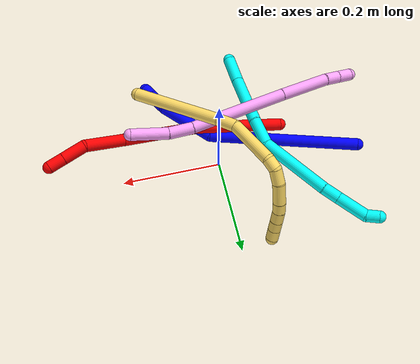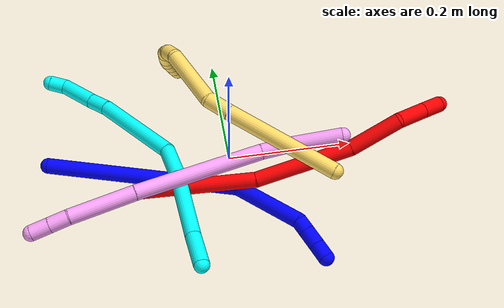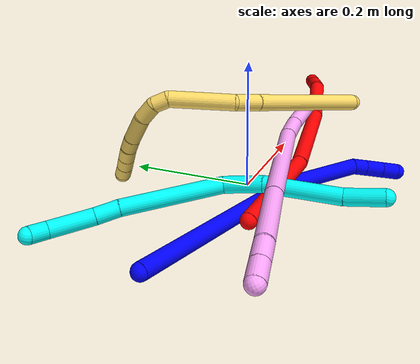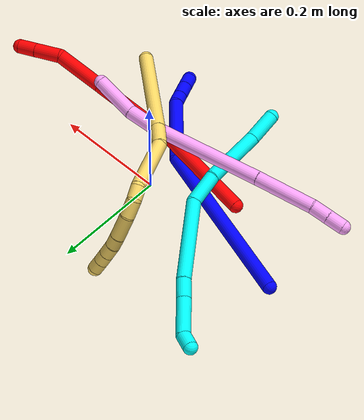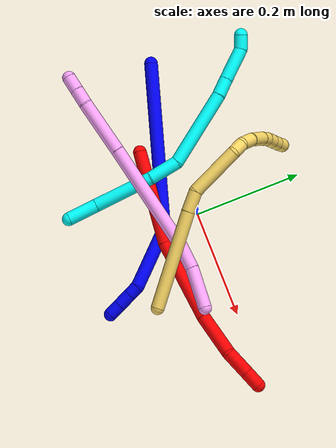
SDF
<sdf version="1.7">
 <world name="default">
  <plugin name="TubeGeneratorPlugin" filename="libtube_generator_plugin.so"/>
  <model name="photoneo_s_sensor">
   <static>1</static>
   <pose>0 0 2 1.57079 1.57079 3.14159</pose>
   <link name="link">
    <inertial><mass>0.1</mass></inertial>
    <sensor name="sensor" type="depth">
     <update_rate>30</update_rate>
     <camera>
      <horizontal_fov>1.22</horizontal_fov>
      <image><width>1920</width><height>1200</height><format>B8G8R8</format></image>
      <clip><near>0.1</near><far>4</far></clip>
      <depth_camera><output>points</output></depth_camera>
     </camera>
     <plugin name="camera_plugin" filename="libgazebo_ros_depth_camera.so">
      <baseline>0.2</baseline>
      <alwaysOn>1</alwaysOn>
      <updateRate>0.0</updateRate>
      <cameraName>camera_ir</cameraName>
      <imageTopicName>/camera/color/image_raw</imageTopicName>
      <cameraInfoTopicName>/camera/color/camera_info</cameraInfoTopicName>
      <depthImageTopicName>/camera/depth/image_raw</depthImageTopicName>
      <depthImageCameraInfoTopicName>/camera/depth/camera_info</depthImageCameraInfoTopicName>
      <pointCloudTopicName>/camera/depth/points</pointCloudTopicName>
      <frameName>fr_optical</frameName>
      <pointCloudCutoff>0.1</pointCloudCutoff>
      <pointCloudCutoffMax>2.0</pointCloudCutoffMax>
      <distortionK1>0</distortionK1>
      <distortionK2>0</distortionK2>
      <distortionK3>0</distortionK3>
      <distortionT1>0</distortionT1>
      <distortionT2>0</distortionT2>
      <CxPrime>0</CxPrime>
      <Cx>0</Cx>
      <Cy>0</Cy>
      <focalLength>0</focalLength>
      <hackBaseline>0</hackBaseline>
     </plugin>
    </sensor>
   </link>
  </model>
  <gravity>0 0 -9.8</gravity>
  <magnetic_field>6e-06 2.3e-05 -4.2e-05</magnetic_field>
  <atmosphere type="adiabatic"/>
  <physics name="default_physics" default="0" type="ode">
   <max_step_size>0.003</max_step_size>
   <real_time_factor>1</real_time_factor>
   <real_time_update_rate>1000</real_time_update_rate>
   <max_contacts>10000</max_contacts>
   <ode>
    <solver>
     <type>quick</type>
     <iters>100</iters>
     <sor>1.3</sor>
     <use_dynamic_moi_rescaling>0</use_dynamic_moi_rescaling>
    </solver>
    <constraints>
     <contact_max_correcting_vel>0</contact_max_correcting_vel>
     <contact_surface_layer>0.001</contact_surface_layer>
     <cfm>0</cfm>
     <erp>0.2</erp>
    </constraints>
   </ode>
  </physics>
  <scene><ambient>0.4 0.4 0.4 1</ambient><background>0.7 0.7 0.7 1</background><shadows>0</shadows></scene>
  <audio><device>default</device></audio>
  <spherical_coordinates>
   <surface_model>EARTH_WGS84</surface_model>
   <latitude_deg>0</latitude_deg>
   <longitude_deg>0</longitude_deg>
   <elevation>0</elevation>
   <heading_deg>0</heading_deg>
  </spherical_coordinates>
  <model name="bin">
   <static>1</static>
   <link name="bottom">
    <collision name="collision-bottom">
     <pose>0 0 -0.01 0 -0 0</pose>
     <geometry><box><size>0.8 0.6 0.02</size></box></geometry>
     <surface>
      <friction><ode><mu>100</mu><mu2>100</mu2></ode></friction>
      <contact><collide_bitmask>65535</collide_bitmask></contact>
     </surface>
    </collision>
   </link>
   <link name="west_wall">
    <collision name="collision-west_wall">
     <pose>-0.41 0 0.1 0 -0 0</pose>
     <geometry><box><size>0.02 0.6 0.2</size></box></geometry>
     <surface>
      <friction><ode><mu>100</mu><mu2>100</mu2></ode></friction>
      <contact><collide_bitmask>65535</collide_bitmask></contact>
     </surface>
    </collision>
   </link>
   <link name="east_wall">
    <collision name="collision-east_wall">
     <pose>0.41 0 0.1 0 -0 0</pose>
     <geometry><box><size>0.02 0.6 0.2</size></box></geometry>
     <surface>
      <friction><ode><mu>100</mu><mu2>100</mu2></ode></friction>
      <contact><collide_bitmask>65535</collide_bitmask></contact>
     </surface>
    </collision>
   </link>
   <link name="south_wall">
    <collision name="collision-south_wall">
     <pose>0 -0.31 0.1 0 -0 0</pose>
     <geometry><box><size>0.8 0.02 0.2</size></box></geometry>
     <surface>
      <friction><ode><mu>100</mu><mu2>100</mu2></ode></friction>
      <contact><collide_bitmask>65535</collide_bitmask></contact>
     </surface>
    </collision>
   </link>
   <link name="north_wall">
    <collision name="collision-north_wall">
     <pose>0 0.31 0.1 0 -0 0</pose>
     <geometry><box><size>0.8 0.02 0.2</size></box></geometry>
     <surface>
      <friction><ode><mu>100</mu><mu2>100</mu2></ode></friction>
      <contact><collide_bitmask>65535</collide_bitmask></contact>
     </surface>
    </collision>
   </link>
  </model>
  <model name="1">
   <static>0</static>
   <link name="1">
    <collision name="collision-cylinder-e_1_1_4">
     <pose>0.024077 -0.043823 -0.146399 2.85074 0.156269 0.981854</pose>
     <geometry><cylinder><radius>0.0125</radius><length>0.309405</length></cylinder></geometry>
     <surface>
      <friction><ode><mu>1.16</mu><mu2>1.16</mu2><slip1>0</slip1><slip2>0</slip2></ode></friction>
      <contact><ode><kp>1e+06</kp><kd>1</kd><max_vel>0</max_vel><min_depth>0.001</min_depth></ode></contact>
     </surface>
    </collision>
    <visual name="visual-cylinder-e_1_1_4">
     <pose>0.024077 -0.043823 -0.146399 2.85074 0.156269 0.981854</pose>
     <geometry><cylinder><radius>0.0125</radius><length>0.309405</length></cylinder></geometry>
     <material><ambient>0 0 1 1</ambient></material>
    </visual>
    <collision name="collision-cylinder-e_2_4_5">
     <pose>0.084677 -0.097557 -0.338267 2.92698 0.665421 2.53723</pose>
     <geometry><cylinder><radius>0.0125</radius><length>0.118316</length></cylinder></geometry>
     <surface>
      <friction><ode><mu>1.16</mu><mu2>1.16</mu2><slip1>0</slip1><slip2>0</slip2></ode></friction>
      <contact><ode><kp>1e+06</kp><kd>1</kd><max_vel>0</max_vel><min_depth>0.001</min_depth></ode></contact>
     </surface>
    </collision>
    <visual name="visual-cylinder-e_2_4_5">
     <pose>0.084677 -0.097557 -0.338267 2.92698 0.665421 2.53723</pose>
     <geometry><cylinder><radius>0.0125</radius><length>0.118316</length></cylinder></geometry>
     <material><ambient>0 0 1 1</ambient></material>
    </visual>
    <collision name="collision-cylinder-e_3_5_6">
     <pose>0.129628 -0.110985 -0.388375 2.49273 0.966315 2.00147</pose>
     <geometry><cylinder><radius>0.0125</radius><length>0.020484</length></cylinder></geometry>
     <surface>
      <friction><ode><mu>1.16</mu><mu2>1.16</mu2><slip1>0</slip1><slip2>0</slip2></ode></friction>
      <contact><ode><kp>1e+06</kp><kd>1</kd><max_vel>0</max_vel><min_depth>0.001</min_depth></ode></contact>
     </surface>
    </collision>
    <visual name="visual-cylinder-e_3_5_6">
     <pose>0.129628 -0.110985 -0.388375 2.49273 0.966315 2.00147</pose>
     <geometry><cylinder><radius>0.0125</radius><length>0.020484</length></cylinder></geometry>
     <material><ambient>0 0 1 1</ambient></material>
    </visual>
    <collision name="collision-cylinder-e_4_6_7">
     <pose>0.149233 -0.119185 -0.399127 2.48805 0.967534 1.9958</pose>
     <geometry><cylinder><radius>0.0125</radius><length>0.027147</length></cylinder></geometry>
     <surface>
      <friction><ode><mu>1.16</mu><mu2>1.16</mu2><slip1>0</slip1><slip2>0</slip2></ode></friction>
      <contact><ode><kp>1e+06</kp><kd>1</kd><max_vel>0</max_vel><min_depth>0.001</min_depth></ode></contact>
     </surface>
    </collision>
    <visual name="visual-cylinder-e_4_6_7">
     <pose>0.149233 -0.119185 -0.399127 2.48805 0.967534 1.9958</pose>
     <geometry><cylinder><radius>0.0125</radius><length>0.027147</length></cylinder></geometry>
     <material><ambient>0 0 1 1</ambient></material>
    </visual>
    <collision name="collision-cylinder-e_5_7_2">
     <pose>0.170584 -0.128101 -0.41076 2.4873 0.970998 1.9985</pose>
     <geometry><cylinder><radius>0.0125</radius><length>0.024648</length></cylinder></geometry>
     <surface>
      <friction><ode><mu>1.16</mu><mu2>1.16</mu2><slip1>0</slip1><slip2>0</slip2></ode></friction>
      <contact><ode><kp>1e+06</kp><kd>1</kd><max_vel>0</max_vel><min_depth>0.001</min_depth></ode></contact>
     </surface>
    </collision>
    <visual name="visual-cylinder-e_5_7_2">
     <pose>0.170584 -0.128101 -0.41076 2.4873 0.970998 1.9985</pose>
     <geometry><cylinder><radius>0.0125</radius><length>0.024648</length></cylinder></geometry>
     <material><ambient>0 0 1 1</ambient></material>
    </visual>
    <collision name="collision-sphere-2">
     <pose>0.180756 -0.132335 -0.41628 0 -0 0</pose>
     <geometry><sphere><radius>0.0125</radius></sphere></geometry>
     <surface>
      <friction><ode><mu>1.16</mu><mu2>1.16</mu2><slip1>0</slip1><slip2>0</slip2></ode></friction>
      <contact><ode><kp>1e+06</kp><kd>1</kd><max_vel>0</max_vel><min_depth>0.001</min_depth></ode></contact>
     </surface>
    </collision>
    <visual name="visual-sphere-2">
     <pose>0.180756 -0.132335 -0.41628 0 -0 0</pose>
     <geometry><sphere><radius>0.0125</radius></sphere></geometry>
     <material><ambient>0 0 1 1</ambient></material>
    </visual>
    <collision name="collision-sphere-7">
     <pose>0.160411 -0.123867 -0.40524 0 -0 0</pose>
     <geometry><sphere><radius>0.0125</radius></sphere></geometry>
     <surface>
      <friction><ode><mu>1.16</mu><mu2>1.16</mu2><slip1>0</slip1><slip2>0</slip2></ode></friction>
      <contact><ode><kp>1e+06</kp><kd>1</kd><max_vel>0</max_vel><min_depth>0.001</min_depth></ode></contact>
     </surface>
    </collision>
    <visual name="visual-sphere-7">
     <pose>0.160411 -0.123867 -0.40524 0 -0 0</pose>
     <geometry><sphere><radius>0.0125</radius></sphere></geometry>
     <material><ambient>0 0 1 1</ambient></material>
    </visual>
    <collision name="collision-sphere-6">
     <pose>0.138055 -0.114503 -0.393013 0 -0 0</pose>
     <geometry><sphere><radius>0.0125</radius></sphere></geometry>
     <surface>
      <friction><ode><mu>1.16</mu><mu2>1.16</mu2><slip1>0</slip1><slip2>0</slip2></ode></friction>
      <contact><ode><kp>1e+06</kp><kd>1</kd><max_vel>0</max_vel><min_depth>0.001</min_depth></ode></contact>
     </surface>
    </collision>
    <visual name="visual-sphere-6">
     <pose>0.138055 -0.114503 -0.393013 0 -0 0</pose>
     <geometry><sphere><radius>0.0125</radius></sphere></geometry>
     <material><ambient>0 0 1 1</ambient></material>
    </visual>
    <collision name="collision-sphere-5">
     <pose>0.121201 -0.107468 -0.383737 0 -0 0</pose>
     <geometry><sphere><radius>0.0125</radius></sphere></geometry>
     <surface>
      <friction><ode><mu>1.16</mu><mu2>1.16</mu2><slip1>0</slip1><slip2>0</slip2></ode></friction>
      <contact><ode><kp>1e+06</kp><kd>1</kd><max_vel>0</max_vel><min_depth>0.001</min_depth></ode></contact>
     </surface>
    </collision>
    <visual name="visual-sphere-5">
     <pose>0.121201 -0.107468 -0.383737 0 -0 0</pose>
     <geometry><sphere><radius>0.0125</radius></sphere></geometry>
     <material><ambient>0 0 1 1</ambient></material>
    </visual>
    <collision name="collision-sphere-1">
     <geometry><sphere><radius>0.0125</radius></sphere></geometry>
     <surface>
      <friction><ode><mu>1.16</mu><mu2>1.16</mu2><slip1>0</slip1><slip2>0</slip2></ode></friction>
      <contact><ode><kp>1e+06</kp><kd>1</kd><max_vel>0</max_vel><min_depth>0.001</min_depth></ode></contact>
     </surface>
    </collision>
    <visual name="visual-sphere-1">
     <geometry><sphere><radius>0.0125</radius></sphere></geometry>
     <material><ambient>0 0 1 1</ambient></material>
    </visual>
    <collision name="collision-sphere-4">
     <pose>0.048154 -0.087646 -0.292798 0 -0 0</pose>
     <geometry><sphere><radius>0.0125</radius></sphere></geometry>
     <surface>
      <friction><ode><mu>1.16</mu><mu2>1.16</mu2><slip1>0</slip1><slip2>0</slip2></ode></friction>
      <contact><ode><kp>1e+06</kp><kd>1</kd><max_vel>0</max_vel><min_depth>0.001</min_depth></ode></contact>
     </surface>
    </collision>
    <visual name="visual-sphere-4">
     <pose>0.048154 -0.087646 -0.292798 0 -0 0</pose>
     <geometry><sphere><radius>0.0125</radius></sphere></geometry>
     <material><ambient>0 0 1 1</ambient></material>
    </visual>
    <inertial>
     <pose>0.056759 -0.067536 -0.228468 0 -0 0</pose>
     <mass>0.5</mass>
     <inertia>
      <ixx>0.003386</ixx>
      <ixy>0</ixy>
      <ixz>0</ixz>
      <iyy>0.000997</iyy>
      <iyz>0</iyz>
      <izz>0.000217</izz>
     </inertia>
    </inertial>
   </link>
   <pose>-0.292713 0.02337 0.011498 1.8498 -0.074905 -1.71221</pose>
  </model>
  <model name="2">
   <static>0</static>
   <link name="2">
    <collision name="collision-cylinder-e_1_1_4">
     <pose>0.064603 0.007147 0.060559 -0.11748 0.814242 -0.050706</pose>
     <geometry><cylinder><radius>0.0125</radius><length>0.177675</length></cylinder></geometry>
     <surface>
      <friction><ode><mu>1.16</mu><mu2>1.16</mu2><slip1>0</slip1><slip2>0</slip2></ode></friction>
      <contact><ode><kp>1e+06</kp><kd>1</kd><max_vel>0</max_vel><min_depth>0.001</min_depth></ode></contact>
     </surface>
    </collision>
    <visual name="visual-cylinder-e_1_1_4">
     <pose>0.064603 0.007147 0.060559 -0.11748 0.814242 -0.050706</pose>
     <geometry><cylinder><radius>0.0125</radius><length>0.177675</length></cylinder></geometry>
     <material><ambient>1 0 0 1</ambient></material>
    </visual>
    <collision name="collision-cylinder-e_2_4_5">
     <pose>0.193968 0.030655 0.162266 -0.378431 0.971062 -0.201417</pose>
     <geometry><cylinder><radius>0.0125</radius><length>0.156907</length></cylinder></geometry>
     <surface>
      <friction><ode><mu>1.16</mu><mu2>1.16</mu2><slip1>0</slip1><slip2>0</slip2></ode></friction>
      <contact><ode><kp>1e+06</kp><kd>1</kd><max_vel>0</max_vel><min_depth>0.001</min_depth></ode></contact>
     </surface>
    </collision>
    <visual name="visual-cylinder-e_2_4_5">
     <pose>0.193968 0.030655 0.162266 -0.378431 0.971062 -0.201417</pose>
     <geometry><cylinder><radius>0.0125</radius><length>0.156907</length></cylinder></geometry>
     <material><ambient>1 0 0 1</ambient></material>
    </visual>
    <collision name="collision-cylinder-e_3_5_6">
     <pose>0.293151 0.064493 0.221782 -0.760574 0.935925 -0.3987</pose>
     <geometry><cylinder><radius>0.0125</radius><length>0.085503</length></cylinder></geometry>
     <surface>
      <friction><ode><mu>1.16</mu><mu2>1.16</mu2><slip1>0</slip1><slip2>0</slip2></ode></friction>
      <contact><ode><kp>1e+06</kp><kd>1</kd><max_vel>0</max_vel><min_depth>0.001</min_depth></ode></contact>
     </surface>
    </collision>
    <visual name="visual-cylinder-e_3_5_6">
     <pose>0.293151 0.064493 0.221782 -0.760574 0.935925 -0.3987</pose>
     <geometry><cylinder><radius>0.0125</radius><length>0.085503</length></cylinder></geometry>
     <material><ambient>1 0 0 1</ambient></material>
    </visual>
    <collision name="collision-cylinder-e_4_6_7">
     <pose>0.350611 0.08184 0.245873 0.022857 1.32728 0.017873</pose>
     <geometry><cylinder><radius>0.0125</radius><length>0.047478</length></cylinder></geometry>
     <surface>
      <friction><ode><mu>1.16</mu><mu2>1.16</mu2><slip1>0</slip1><slip2>0</slip2></ode></friction>
      <contact><ode><kp>1e+06</kp><kd>1</kd><max_vel>0</max_vel><min_depth>0.001</min_depth></ode></contact>
     </surface>
    </collision>
    <visual name="visual-cylinder-e_4_6_7">
     <pose>0.350611 0.08184 0.245873 0.022857 1.32728 0.017873</pose>
     <geometry><cylinder><radius>0.0125</radius><length>0.047478</length></cylinder></geometry>
     <material><ambient>1 0 0 1</ambient></material>
    </visual>
    <collision name="collision-cylinder-e_5_7_2">
     <pose>0.389367 0.081479 0.255589 0.057651 1.32158 0.044821</pose>
     <geometry><cylinder><radius>0.0125</radius><length>0.032438</length></cylinder></geometry>
     <surface>
      <friction><ode><mu>1.16</mu><mu2>1.16</mu2><slip1>0</slip1><slip2>0</slip2></ode></friction>
      <contact><ode><kp>1e+06</kp><kd>1</kd><max_vel>0</max_vel><min_depth>0.001</min_depth></ode></contact>
     </surface>
    </collision>
    <visual name="visual-cylinder-e_5_7_2">
     <pose>0.389367 0.081479 0.255589 0.057651 1.32158 0.044821</pose>
     <geometry><cylinder><radius>0.0125</radius><length>0.032438</length></cylinder></geometry>
     <material><ambient>1 0 0 1</ambient></material>
    </visual>
    <collision name="collision-sphere-2">
     <pose>0.405086 0.081248 0.259582 0 -0 0</pose>
     <geometry><sphere><radius>0.0125</radius></sphere></geometry>
     <surface>
      <friction><ode><mu>1.16</mu><mu2>1.16</mu2><slip1>0</slip1><slip2>0</slip2></ode></friction>
      <contact><ode><kp>1e+06</kp><kd>1</kd><max_vel>0</max_vel><min_depth>0.001</min_depth></ode></contact>
     </surface>
    </collision>
    <visual name="visual-sphere-2">
     <pose>0.405086 0.081248 0.259582 0 -0 0</pose>
     <geometry><sphere><radius>0.0125</radius></sphere></geometry>
     <material><ambient>1 0 0 1</ambient></material>
    </visual>
    <collision name="collision-sphere-7">
     <pose>0.373649 0.081709 0.251595 0 -0 0</pose>
     <geometry><sphere><radius>0.0125</radius></sphere></geometry>
     <surface>
      <friction><ode><mu>1.16</mu><mu2>1.16</mu2><slip1>0</slip1><slip2>0</slip2></ode></friction>
      <contact><ode><kp>1e+06</kp><kd>1</kd><max_vel>0</max_vel><min_depth>0.001</min_depth></ode></contact>
     </surface>
    </collision>
    <visual name="visual-sphere-7">
     <pose>0.373649 0.081709 0.251595 0 -0 0</pose>
     <geometry><sphere><radius>0.0125</radius></sphere></geometry>
     <material><ambient>1 0 0 1</ambient></material>
    </visual>
    <collision name="collision-sphere-6">
     <pose>0.327573 0.081971 0.24015 0 -0 0</pose>
     <geometry><sphere><radius>0.0125</radius></sphere></geometry>
     <surface>
      <friction><ode><mu>1.16</mu><mu2>1.16</mu2><slip1>0</slip1><slip2>0</slip2></ode></friction>
      <contact><ode><kp>1e+06</kp><kd>1</kd><max_vel>0</max_vel><min_depth>0.001</min_depth></ode></contact>
     </surface>
    </collision>
    <visual name="visual-sphere-6">
     <pose>0.327573 0.081971 0.24015 0 -0 0</pose>
     <geometry><sphere><radius>0.0125</radius></sphere></geometry>
     <material><ambient>1 0 0 1</ambient></material>
    </visual>
    <collision name="collision-sphere-5">
     <pose>0.25873 0.047015 0.203414 0 -0 0</pose>
     <geometry><sphere><radius>0.0125</radius></sphere></geometry>
     <surface>
      <friction><ode><mu>1.16</mu><mu2>1.16</mu2><slip1>0</slip1><slip2>0</slip2></ode></friction>
      <contact><ode><kp>1e+06</kp><kd>1</kd><max_vel>0</max_vel><min_depth>0.001</min_depth></ode></contact>
     </surface>
    </collision>
    <visual name="visual-sphere-5">
     <pose>0.25873 0.047015 0.203414 0 -0 0</pose>
     <geometry><sphere><radius>0.0125</radius></sphere></geometry>
     <material><ambient>1 0 0 1</ambient></material>
    </visual>
    <collision name="collision-sphere-1">
     <geometry><sphere><radius>0.0125</radius></sphere></geometry>
     <surface>
      <friction><ode><mu>1.16</mu><mu2>1.16</mu2><slip1>0</slip1><slip2>0</slip2></ode></friction>
      <contact><ode><kp>1e+06</kp><kd>1</kd><max_vel>0</max_vel><min_depth>0.001</min_depth></ode></contact>
     </surface>
    </collision>
    <visual name="visual-sphere-1">
     <geometry><sphere><radius>0.0125</radius></sphere></geometry>
     <material><ambient>1 0 0 1</ambient></material>
    </visual>
    <collision name="collision-sphere-4">
     <pose>0.129206 0.014295 0.121119 0 -0 0</pose>
     <geometry><sphere><radius>0.0125</radius></sphere></geometry>
     <surface>
      <friction><ode><mu>1.16</mu><mu2>1.16</mu2><slip1>0</slip1><slip2>0</slip2></ode></friction>
      <contact><ode><kp>1e+06</kp><kd>1</kd><max_vel>0</max_vel><min_depth>0.001</min_depth></ode></contact>
     </surface>
    </collision>
    <visual name="visual-sphere-4">
     <pose>0.129206 0.014295 0.121119 0 -0 0</pose>
     <geometry><sphere><radius>0.0125</radius></sphere></geometry>
     <material><ambient>1 0 0 1</ambient></material>
    </visual>
    <inertial>
     <pose>0.19251 0.036246 0.150296 0 -0 0</pose>
     <mass>0.5</mass>
     <inertia>
      <ixx>0.000506</ixx>
      <ixy>0</ixy>
      <ixz>0</ixz>
      <iyy>0.000795</iyy>
      <iyz>0</iyz>
      <izz>-0.000784</izz>
     </inertia>
    </inertial>
   </link>
   <pose>-0.145332 -0.056916 0.020517 1.39409 0.13127 0.611844</pose>
  </model>
  <model name="3">
   <static>0</static>
   <link name="3">
    <collision name="collision-cylinder-e_1_1_4">
     <pose>-0.001529 0.025879 -0.010793 -1.96593 -0.054465 0.081702</pose>
     <geometry><cylinder><radius>0.0125</radius><length>0.056163</length></cylinder></geometry>
     <surface>
      <friction><ode><mu>1.16</mu><mu2>1.16</mu2><slip1>0</slip1><slip2>0</slip2></ode></friction>
      <contact><ode><kp>1e+06</kp><kd>1</kd><max_vel>0</max_vel><min_depth>0.001</min_depth></ode></contact>
     </surface>
    </collision>
    <visual name="visual-cylinder-e_1_1_4">
     <pose>-0.001529 0.025879 -0.010793 -1.96593 -0.054465 0.081702</pose>
     <geometry><cylinder><radius>0.0125</radius><length>0.056163</length></cylinder></geometry>
     <material><ambient>0.003922 1 0.996078 1</ambient></material>
    </visual>
    <collision name="collision-cylinder-e_2_4_5">
     <pose>-0.005757 0.105988 -0.034851 -1.81068 -0.048312 0.061546</pose>
     <geometry><cylinder><radius>0.0125</radius><length>0.111786</length></cylinder></geometry>
     <surface>
      <friction><ode><mu>1.16</mu><mu2>1.16</mu2><slip1>0</slip1><slip2>0</slip2></ode></friction>
      <contact><ode><kp>1e+06</kp><kd>1</kd><max_vel>0</max_vel><min_depth>0.001</min_depth></ode></contact>
     </surface>
    </collision>
    <visual name="visual-cylinder-e_2_4_5">
     <pose>-0.005757 0.105988 -0.034851 -1.81068 -0.048312 0.061546</pose>
     <geometry><cylinder><radius>0.0125</radius><length>0.111786</length></cylinder></geometry>
     <material><ambient>0.003922 1 0.996078 1</ambient></material>
    </visual>
    <collision name="collision-cylinder-e_3_5_6">
     <pose>-0.012288 0.186694 -0.05902 -1.9615 -0.133037 0.198315</pose>
     <geometry><cylinder><radius>0.0125</radius><length>0.057782</length></cylinder></geometry>
     <surface>
      <friction><ode><mu>1.16</mu><mu2>1.16</mu2><slip1>0</slip1><slip2>0</slip2></ode></friction>
      <contact><ode><kp>1e+06</kp><kd>1</kd><max_vel>0</max_vel><min_depth>0.001</min_depth></ode></contact>
     </surface>
    </collision>
    <visual name="visual-cylinder-e_3_5_6">
     <pose>-0.012288 0.186694 -0.05902 -1.9615 -0.133037 0.198315</pose>
     <geometry><cylinder><radius>0.0125</radius><length>0.057782</length></cylinder></geometry>
     <material><ambient>0.003922 1 0.996078 1</ambient></material>
    </visual>
    <collision name="collision-cylinder-e_4_6_7">
     <pose>-0.057838 0.268791 -0.096184 -2.01189 -0.595991 0.902594</pose>
     <geometry><cylinder><radius>0.0125</radius><length>0.148639</length></cylinder></geometry>
     <surface>
      <friction><ode><mu>1.16</mu><mu2>1.16</mu2><slip1>0</slip1><slip2>0</slip2></ode></friction>
      <contact><ode><kp>1e+06</kp><kd>1</kd><max_vel>0</max_vel><min_depth>0.001</min_depth></ode></contact>
     </surface>
    </collision>
    <visual name="visual-cylinder-e_4_6_7">
     <pose>-0.057838 0.268791 -0.096184 -2.01189 -0.595991 0.902594</pose>
     <geometry><cylinder><radius>0.0125</radius><length>0.148639</length></cylinder></geometry>
     <material><ambient>0.003922 1 0.996078 1</ambient></material>
    </visual>
    <collision name="collision-cylinder-e_5_7_8">
     <pose>-0.110603 0.335473 -0.129246 -2.12214 -0.70487 1.16388</pose>
     <geometry><cylinder><radius>0.0125</radius><length>0.0341</length></cylinder></geometry>
     <surface>
      <friction><ode><mu>1.16</mu><mu2>1.16</mu2><slip1>0</slip1><slip2>0</slip2></ode></friction>
      <contact><ode><kp>1e+06</kp><kd>1</kd><max_vel>0</max_vel><min_depth>0.001</min_depth></ode></contact>
     </surface>
    </collision>
    <visual name="visual-cylinder-e_5_7_8">
     <pose>-0.110603 0.335473 -0.129246 -2.12214 -0.70487 1.16388</pose>
     <geometry><cylinder><radius>0.0125</radius><length>0.0341</length></cylinder></geometry>
     <material><ambient>0.003922 1 0.996078 1</ambient></material>
    </visual>
    <collision name="collision-cylinder-e_6_8_9">
     <pose>-0.142248 0.368551 -0.147382 -2.04621 -0.693863 1.07018</pose>
     <geometry><cylinder><radius>0.0125</radius><length>0.064418</length></cylinder></geometry>
     <surface>
      <friction><ode><mu>1.16</mu><mu2>1.16</mu2><slip1>0</slip1><slip2>0</slip2></ode></friction>
      <contact><ode><kp>1e+06</kp><kd>1</kd><max_vel>0</max_vel><min_depth>0.001</min_depth></ode></contact>
     </surface>
    </collision>
    <visual name="visual-cylinder-e_6_8_9">
     <pose>-0.142248 0.368551 -0.147382 -2.04621 -0.693863 1.07018</pose>
     <geometry><cylinder><radius>0.0125</radius><length>0.064418</length></cylinder></geometry>
     <material><ambient>0.003922 1 0.996078 1</ambient></material>
    </visual>
    <collision name="collision-cylinder-e_7_9_2">
     <pose>-0.175174 0.396177 -0.159283 -1.6715 -1.1418 1.23535</pose>
     <geometry><cylinder><radius>0.0125</radius><length>0.027113</length></cylinder></geometry>
     <surface>
      <friction><ode><mu>1.16</mu><mu2>1.16</mu2><slip1>0</slip1><slip2>0</slip2></ode></friction>
      <contact><ode><kp>1e+06</kp><kd>1</kd><max_vel>0</max_vel><min_depth>0.001</min_depth></ode></contact>
     </surface>
    </collision>
    <visual name="visual-cylinder-e_7_9_2">
     <pose>-0.175174 0.396177 -0.159283 -1.6715 -1.1418 1.23535</pose>
     <geometry><cylinder><radius>0.0125</radius><length>0.027113</length></cylinder></geometry>
     <material><ambient>0.003922 1 0.996078 1</ambient></material>
    </visual>
    <collision name="collision-sphere-2">
     <pose>-0.187502 0.401788 -0.15985 0 -0 0</pose>
     <geometry><sphere><radius>0.0125</radius></sphere></geometry>
     <surface>
      <friction><ode><mu>1.16</mu><mu2>1.16</mu2><slip1>0</slip1><slip2>0</slip2></ode></friction>
      <contact><ode><kp>1e+06</kp><kd>1</kd><max_vel>0</max_vel><min_depth>0.001</min_depth></ode></contact>
     </surface>
    </collision>
    <visual name="visual-sphere-2">
     <pose>-0.187502 0.401788 -0.15985 0 -0 0</pose>
     <geometry><sphere><radius>0.0125</radius></sphere></geometry>
     <material><ambient>0.003922 1 0.996078 1</ambient></material>
    </visual>
    <collision name="collision-sphere-9">
     <pose>-0.162846 0.390567 -0.158716 0 -0 0</pose>
     <geometry><sphere><radius>0.0125</radius></sphere></geometry>
     <surface>
      <friction><ode><mu>1.16</mu><mu2>1.16</mu2><slip1>0</slip1><slip2>0</slip2></ode></friction>
      <contact><ode><kp>1e+06</kp><kd>1</kd><max_vel>0</max_vel><min_depth>0.001</min_depth></ode></contact>
     </surface>
    </collision>
    <visual name="visual-sphere-9">
     <pose>-0.162846 0.390567 -0.158716 0 -0 0</pose>
     <geometry><sphere><radius>0.0125</radius></sphere></geometry>
     <material><ambient>0.003922 1 0.996078 1</ambient></material>
    </visual>
    <collision name="collision-sphere-4">
     <pose>-0.003057 0.051759 -0.021587 0 -0 0</pose>
     <geometry><sphere><radius>0.0125</radius></sphere></geometry>
     <surface>
      <friction><ode><mu>1.16</mu><mu2>1.16</mu2><slip1>0</slip1><slip2>0</slip2></ode></friction>
      <contact><ode><kp>1e+06</kp><kd>1</kd><max_vel>0</max_vel><min_depth>0.001</min_depth></ode></contact>
     </surface>
    </collision>
    <visual name="visual-sphere-4">
     <pose>-0.003057 0.051759 -0.021587 0 -0 0</pose>
     <geometry><sphere><radius>0.0125</radius></sphere></geometry>
     <material><ambient>0.003922 1 0.996078 1</ambient></material>
    </visual>
    <collision name="collision-sphere-1">
     <geometry><sphere><radius>0.0125</radius></sphere></geometry>
     <surface>
      <friction><ode><mu>1.16</mu><mu2>1.16</mu2><slip1>0</slip1><slip2>0</slip2></ode></friction>
      <contact><ode><kp>1e+06</kp><kd>1</kd><max_vel>0</max_vel><min_depth>0.001</min_depth></ode></contact>
     </surface>
    </collision>
    <visual name="visual-sphere-1">
     <geometry><sphere><radius>0.0125</radius></sphere></geometry>
     <material><ambient>0.003922 1 0.996078 1</ambient></material>
    </visual>
    <collision name="collision-sphere-8">
     <pose>-0.12165 0.346536 -0.136049 0 -0 0</pose>
     <geometry><sphere><radius>0.0125</radius></sphere></geometry>
     <surface>
      <friction><ode><mu>1.16</mu><mu2>1.16</mu2><slip1>0</slip1><slip2>0</slip2></ode></friction>
      <contact><ode><kp>1e+06</kp><kd>1</kd><max_vel>0</max_vel><min_depth>0.001</min_depth></ode></contact>
     </surface>
    </collision>
    <visual name="visual-sphere-8">
     <pose>-0.12165 0.346536 -0.136049 0 -0 0</pose>
     <geometry><sphere><radius>0.0125</radius></sphere></geometry>
     <material><ambient>0.003922 1 0.996078 1</ambient></material>
    </visual>
    <collision name="collision-sphere-5">
     <pose>-0.008456 0.160217 -0.048115 0 -0 0</pose>
     <geometry><sphere><radius>0.0125</radius></sphere></geometry>
     <surface>
      <friction><ode><mu>1.16</mu><mu2>1.16</mu2><slip1>0</slip1><slip2>0</slip2></ode></friction>
      <contact><ode><kp>1e+06</kp><kd>1</kd><max_vel>0</max_vel><min_depth>0.001</min_depth></ode></contact>
     </surface>
    </collision>
    <visual name="visual-sphere-5">
     <pose>-0.008456 0.160217 -0.048115 0 -0 0</pose>
     <geometry><sphere><radius>0.0125</radius></sphere></geometry>
     <material><ambient>0.003922 1 0.996078 1</ambient></material>
    </visual>
    <collision name="collision-sphere-6">
     <pose>-0.01612 0.213172 -0.069926 0 -0 0</pose>
     <geometry><sphere><radius>0.0125</radius></sphere></geometry>
     <surface>
      <friction><ode><mu>1.16</mu><mu2>1.16</mu2><slip1>0</slip1><slip2>0</slip2></ode></friction>
      <contact><ode><kp>1e+06</kp><kd>1</kd><max_vel>0</max_vel><min_depth>0.001</min_depth></ode></contact>
     </surface>
    </collision>
    <visual name="visual-sphere-6">
     <pose>-0.01612 0.213172 -0.069926 0 -0 0</pose>
     <geometry><sphere><radius>0.0125</radius></sphere></geometry>
     <material><ambient>0.003922 1 0.996078 1</ambient></material>
    </visual>
    <collision name="collision-sphere-7">
     <pose>-0.099556 0.324411 -0.122443 0 -0 0</pose>
     <geometry><sphere><radius>0.0125</radius></sphere></geometry>
     <surface>
      <friction><ode><mu>1.16</mu><mu2>1.16</mu2><slip1>0</slip1><slip2>0</slip2></ode></friction>
      <contact><ode><kp>1e+06</kp><kd>1</kd><max_vel>0</max_vel><min_depth>0.001</min_depth></ode></contact>
     </surface>
    </collision>
    <visual name="visual-sphere-7">
     <pose>-0.099556 0.324411 -0.122443 0 -0 0</pose>
     <geometry><sphere><radius>0.0125</radius></sphere></geometry>
     <material><ambient>0.003922 1 0.996078 1</ambient></material>
    </visual>
    <inertial>
     <pose>-0.055441 0.219928 -0.080858 0 -0 0</pose>
     <mass>0.5</mass>
     <inertia>
      <ixx>0.00051</ixx>
      <ixy>0</ixy>
      <ixz>0</ixz>
      <iyy>0.000253</iyy>
      <iyz>0</iyz>
      <izz>-0.000205</izz>
     </inertia>
    </inertial>
   </link>
   <pose>-0.075562 -0.224319 0.053686 0.271162 0.039602 0.036537</pose>
  </model>
  <model name="4">
   <static>0</static>
   <link name="4">
    <collision name="collision-cylinder-e_1_1_4">
     <pose>-0.038842 0.002194 -0.003594 -2.59362 -1.46281 2.5346</pose>
     <geometry><cylinder><radius>0.0125</radius><length>0.078139</length></cylinder></geometry>
     <surface>
      <friction><ode><mu>1.16</mu><mu2>1.16</mu2><slip1>0</slip1><slip2>0</slip2></ode></friction>
      <contact><ode><kp>1e+06</kp><kd>1</kd><max_vel>0</max_vel><min_depth>0.001</min_depth></ode></contact>
     </surface>
    </collision>
    <visual name="visual-cylinder-e_1_1_4">
     <pose>-0.038842 0.002194 -0.003594 -2.59362 -1.46281 2.5346</pose>
     <geometry><cylinder><radius>0.0125</radius><length>0.078139</length></cylinder></geometry>
     <material><ambient>1 0.65098 0.996078 1</ambient></material>
    </visual>
    <collision name="collision-cylinder-e_2_4_5">
     <pose>-0.102943 0.00117 -0.008954 2.07266 -1.42651 -1.94158</pose>
     <geometry><cylinder><radius>0.0125</radius><length>0.051047</length></cylinder></geometry>
     <surface>
      <friction><ode><mu>1.16</mu><mu2>1.16</mu2><slip1>0</slip1><slip2>0</slip2></ode></friction>
      <contact><ode><kp>1e+06</kp><kd>1</kd><max_vel>0</max_vel><min_depth>0.001</min_depth></ode></contact>
     </surface>
    </collision>
    <visual name="visual-cylinder-e_2_4_5">
     <pose>-0.102943 0.00117 -0.008954 2.07266 -1.42651 -1.94158</pose>
     <geometry><cylinder><radius>0.0125</radius><length>0.051047</length></cylinder></geometry>
     <material><ambient>1 0.65098 0.996078 1</ambient></material>
    </visual>
    <collision name="collision-cylinder-e_3_5_6">
     <pose>-0.227097 -0.027994 -0.019495 1.89695 -1.30061 -1.62932</pose>
     <geometry><cylinder><radius>0.0125</radius><length>0.205237</length></cylinder></geometry>
     <surface>
      <friction><ode><mu>1.16</mu><mu2>1.16</mu2><slip1>0</slip1><slip2>0</slip2></ode></friction>
      <contact><ode><kp>1e+06</kp><kd>1</kd><max_vel>0</max_vel><min_depth>0.001</min_depth></ode></contact>
     </surface>
    </collision>
    <visual name="visual-cylinder-e_3_5_6">
     <pose>-0.227097 -0.027994 -0.019495 1.89695 -1.30061 -1.62932</pose>
     <geometry><cylinder><radius>0.0125</radius><length>0.205237</length></cylinder></geometry>
     <material><ambient>1 0.65098 0.996078 1</ambient></material>
    </visual>
    <collision name="collision-cylinder-e_4_6_7">
     <pose>-0.376303 -0.066492 -0.035264 2.07906 -1.29262 -1.81807</pose>
     <geometry><cylinder><radius>0.0125</radius><length>0.104645</length></cylinder></geometry>
     <surface>
      <friction><ode><mu>1.16</mu><mu2>1.16</mu2><slip1>0</slip1><slip2>0</slip2></ode></friction>
      <contact><ode><kp>1e+06</kp><kd>1</kd><max_vel>0</max_vel><min_depth>0.001</min_depth></ode></contact>
     </surface>
    </collision>
    <visual name="visual-cylinder-e_4_6_7">
     <pose>-0.376303 -0.066492 -0.035264 2.07906 -1.29262 -1.81807</pose>
     <geometry><cylinder><radius>0.0125</radius><length>0.104645</length></cylinder></geometry>
     <material><ambient>1 0.65098 0.996078 1</ambient></material>
    </visual>
    <collision name="collision-cylinder-e_5_7_8">
     <pose>-0.441449 -0.081151 -0.046073 2.6372 -1.28493 -2.47838</pose>
     <geometry><cylinder><radius>0.0125</radius><length>0.030925</length></cylinder></geometry>
     <surface>
      <friction><ode><mu>1.16</mu><mu2>1.16</mu2><slip1>0</slip1><slip2>0</slip2></ode></friction>
      <contact><ode><kp>1e+06</kp><kd>1</kd><max_vel>0</max_vel><min_depth>0.001</min_depth></ode></contact>
     </surface>
    </collision>
    <visual name="visual-cylinder-e_5_7_8">
     <pose>-0.441449 -0.081151 -0.046073 2.6372 -1.28493 -2.47838</pose>
     <geometry><cylinder><radius>0.0125</radius><length>0.030925</length></cylinder></geometry>
     <material><ambient>1 0.65098 0.996078 1</ambient></material>
    </visual>
    <collision name="collision-cylinder-e_6_8_2">
     <pose>-0.470668 -0.08533 -0.053621 2.63467 -1.28242 -2.47354</pose>
     <geometry><cylinder><radius>0.0125</radius><length>0.030007</length></cylinder></geometry>
     <surface>
      <friction><ode><mu>1.16</mu><mu2>1.16</mu2><slip1>0</slip1><slip2>0</slip2></ode></friction>
      <contact><ode><kp>1e+06</kp><kd>1</kd><max_vel>0</max_vel><min_depth>0.001</min_depth></ode></contact>
     </surface>
    </collision>
    <visual name="visual-cylinder-e_6_8_2">
     <pose>-0.470668 -0.08533 -0.053621 2.63467 -1.28242 -2.47354</pose>
     <geometry><cylinder><radius>0.0125</radius><length>0.030007</length></cylinder></geometry>
     <material><ambient>1 0.65098 0.996078 1</ambient></material>
    </visual>
    <collision name="collision-sphere-2">
     <pose>-0.485052 -0.087401 -0.057351 0 -0 0</pose>
     <geometry><sphere><radius>0.0125</radius></sphere></geometry>
     <surface>
      <friction><ode><mu>1.16</mu><mu2>1.16</mu2><slip1>0</slip1><slip2>0</slip2></ode></friction>
      <contact><ode><kp>1e+06</kp><kd>1</kd><max_vel>0</max_vel><min_depth>0.001</min_depth></ode></contact>
     </surface>
    </collision>
    <visual name="visual-sphere-2">
     <pose>-0.485052 -0.087401 -0.057351 0 -0 0</pose>
     <geometry><sphere><radius>0.0125</radius></sphere></geometry>
     <material><ambient>1 0.65098 0.996078 1</ambient></material>
    </visual>
    <collision name="collision-sphere-4">
     <pose>-0.077684 0.004387 -0.007189 0 -0 0</pose>
     <geometry><sphere><radius>0.0125</radius></sphere></geometry>
     <surface>
      <friction><ode><mu>1.16</mu><mu2>1.16</mu2><slip1>0</slip1><slip2>0</slip2></ode></friction>
      <contact><ode><kp>1e+06</kp><kd>1</kd><max_vel>0</max_vel><min_depth>0.001</min_depth></ode></contact>
     </surface>
    </collision>
    <visual name="visual-sphere-4">
     <pose>-0.077684 0.004387 -0.007189 0 -0 0</pose>
     <geometry><sphere><radius>0.0125</radius></sphere></geometry>
     <material><ambient>1 0.65098 0.996078 1</ambient></material>
    </visual>
    <collision name="collision-sphere-1">
     <geometry><sphere><radius>0.0125</radius></sphere></geometry>
     <surface>
      <friction><ode><mu>1.16</mu><mu2>1.16</mu2><slip1>0</slip1><slip2>0</slip2></ode></friction>
      <contact><ode><kp>1e+06</kp><kd>1</kd><max_vel>0</max_vel><min_depth>0.001</min_depth></ode></contact>
     </surface>
    </collision>
    <visual name="visual-sphere-1">
     <geometry><sphere><radius>0.0125</radius></sphere></geometry>
     <material><ambient>1 0.65098 0.996078 1</ambient></material>
    </visual>
    <collision name="collision-sphere-8">
     <pose>-0.456284 -0.083258 -0.04989 0 -0 0</pose>
     <geometry><sphere><radius>0.0125</radius></sphere></geometry>
     <surface>
      <friction><ode><mu>1.16</mu><mu2>1.16</mu2><slip1>0</slip1><slip2>0</slip2></ode></friction>
      <contact><ode><kp>1e+06</kp><kd>1</kd><max_vel>0</max_vel><min_depth>0.001</min_depth></ode></contact>
     </surface>
    </collision>
    <visual name="visual-sphere-8">
     <pose>-0.456284 -0.083258 -0.04989 0 -0 0</pose>
     <geometry><sphere><radius>0.0125</radius></sphere></geometry>
     <material><ambient>1 0.65098 0.996078 1</ambient></material>
    </visual>
    <collision name="collision-sphere-5">
     <pose>-0.128201 -0.002047 -0.01072 0 -0 0</pose>
     <geometry><sphere><radius>0.0125</radius></sphere></geometry>
     <surface>
      <friction><ode><mu>1.16</mu><mu2>1.16</mu2><slip1>0</slip1><slip2>0</slip2></ode></friction>
      <contact><ode><kp>1e+06</kp><kd>1</kd><max_vel>0</max_vel><min_depth>0.001</min_depth></ode></contact>
     </surface>
    </collision>
    <visual name="visual-sphere-5">
     <pose>-0.128201 -0.002047 -0.01072 0 -0 0</pose>
     <geometry><sphere><radius>0.0125</radius></sphere></geometry>
     <material><ambient>1 0.65098 0.996078 1</ambient></material>
    </visual>
    <collision name="collision-sphere-6">
     <pose>-0.325992 -0.05394 -0.028271 0 -0 0</pose>
     <geometry><sphere><radius>0.0125</radius></sphere></geometry>
     <surface>
      <friction><ode><mu>1.16</mu><mu2>1.16</mu2><slip1>0</slip1><slip2>0</slip2></ode></friction>
      <contact><ode><kp>1e+06</kp><kd>1</kd><max_vel>0</max_vel><min_depth>0.001</min_depth></ode></contact>
     </surface>
    </collision>
    <visual name="visual-sphere-6">
     <pose>-0.325992 -0.05394 -0.028271 0 -0 0</pose>
     <geometry><sphere><radius>0.0125</radius></sphere></geometry>
     <material><ambient>1 0.65098 0.996078 1</ambient></material>
    </visual>
    <collision name="collision-sphere-7">
     <pose>-0.426614 -0.079044 -0.042256 0 -0 0</pose>
     <geometry><sphere><radius>0.0125</radius></sphere></geometry>
     <surface>
      <friction><ode><mu>1.16</mu><mu2>1.16</mu2><slip1>0</slip1><slip2>0</slip2></ode></friction>
      <contact><ode><kp>1e+06</kp><kd>1</kd><max_vel>0</max_vel><min_depth>0.001</min_depth></ode></contact>
     </surface>
    </collision>
    <visual name="visual-sphere-7">
     <pose>-0.426614 -0.079044 -0.042256 0 -0 0</pose>
     <geometry><sphere><radius>0.0125</radius></sphere></geometry>
     <material><ambient>1 0.65098 0.996078 1</ambient></material>
    </visual>
    <inertial>
     <pose>-0.244103 -0.035085 -0.022926 0 -0 0</pose>
     <mass>0.5</mass>
     <inertia>
      <ixx>-0.000283</ixx>
      <ixy>0</ixy>
      <ixz>0</ixz>
      <iyy>0.000605</iyy>
      <iyz>0</iyz>
      <izz>0.001064</izz>
     </inertia>
    </inertial>
   </link>
   <pose>0.169771 -0.052761 0.093393 -0.458776 -0.060616 -0.057827</pose>
  </model>
  <model name="5">
   <static>0</static>
   <link name="5">
    <collision name="collision-cylinder-e_1_1_4">
     <pose>-0.024597 0.087454 -0.013402 -1.72286 -0.27116 0.315195</pose>
     <geometry><cylinder><radius>0.0125</radius><length>0.183662</length></cylinder></geometry>
     <surface>
      <friction><ode><mu>1.16</mu><mu2>1.16</mu2><slip1>0</slip1><slip2>0</slip2></ode></friction>
      <contact><ode><kp>1e+06</kp><kd>1</kd><max_vel>0</max_vel><min_depth>0.001</min_depth></ode></contact>
     </surface>
    </collision>
    <visual name="visual-cylinder-e_1_1_4">
     <pose>-0.024597 0.087454 -0.013402 -1.72286 -0.27116 0.315195</pose>
     <geometry><cylinder><radius>0.0125</radius><length>0.183662</length></cylinder></geometry>
     <material><ambient>1 0.858824 0.4 1</ambient></material>
    </visual>
    <collision name="collision-cylinder-e_2_4_5">
     <pose>-0.055013 0.193599 -0.0288 -1.67714 -0.300228 0.333391</pose>
     <geometry><cylinder><radius>0.0125</radius><length>0.039352</length></cylinder></geometry>
     <surface>
      <friction><ode><mu>1.16</mu><mu2>1.16</mu2><slip1>0</slip1><slip2>0</slip2></ode></friction>
      <contact><ode><kp>1e+06</kp><kd>1</kd><max_vel>0</max_vel><min_depth>0.001</min_depth></ode></contact>
     </surface>
    </collision>
    <visual name="visual-cylinder-e_2_4_5">
     <pose>-0.055013 0.193599 -0.0288 -1.67714 -0.300228 0.333391</pose>
     <geometry><cylinder><radius>0.0125</radius><length>0.039352</length></cylinder></geometry>
     <material><ambient>1 0.858824 0.4 1</ambient></material>
    </visual>
    <collision name="collision-cylinder-e_3_5_6">
     <pose>-0.085965 0.253 -0.019429 -1.29854 -0.536457 0.411356</pose>
     <geometry><cylinder><radius>0.0125</radius><length>0.098353</length></cylinder></geometry>
     <surface>
      <friction><ode><mu>1.16</mu><mu2>1.16</mu2><slip1>0</slip1><slip2>0</slip2></ode></friction>
      <contact><ode><kp>1e+06</kp><kd>1</kd><max_vel>0</max_vel><min_depth>0.001</min_depth></ode></contact>
     </surface>
    </collision>
    <visual name="visual-cylinder-e_3_5_6">
     <pose>-0.085965 0.253 -0.019429 -1.29854 -0.536457 0.411356</pose>
     <geometry><cylinder><radius>0.0125</radius><length>0.098353</length></cylinder></geometry>
     <material><ambient>1 0.858824 0.4 1</ambient></material>
    </visual>
    <collision name="collision-cylinder-e_4_6_7">
     <pose>-0.112902 0.303535 -0.002189 -1.03191 -0.156225 0.088733</pose>
     <geometry><cylinder><radius>0.0125</radius><length>0.023174</length></cylinder></geometry>
     <surface>
      <friction><ode><mu>1.16</mu><mu2>1.16</mu2><slip1>0</slip1><slip2>0</slip2></ode></friction>
      <contact><ode><kp>1e+06</kp><kd>1</kd><max_vel>0</max_vel><min_depth>0.001</min_depth></ode></contact>
     </surface>
    </collision>
    <visual name="visual-cylinder-e_4_6_7">
     <pose>-0.112902 0.303535 -0.002189 -1.03191 -0.156225 0.088733</pose>
     <geometry><cylinder><radius>0.0125</radius><length>0.023174</length></cylinder></geometry>
     <material><ambient>1 0.858824 0.4 1</ambient></material>
    </visual>
    <collision name="collision-cylinder-e_5_7_8">
     <pose>-0.112702 0.321732 0.016022 -0.596279 0.133533 -0.04109</pose>
     <geometry><cylinder><radius>0.0125</radius><length>0.030089</length></cylinder></geometry>
     <surface>
      <friction><ode><mu>1.16</mu><mu2>1.16</mu2><slip1>0</slip1><slip2>0</slip2></ode></friction>
      <contact><ode><kp>1e+06</kp><kd>1</kd><max_vel>0</max_vel><min_depth>0.001</min_depth></ode></contact>
     </surface>
    </collision>
    <visual name="visual-cylinder-e_5_7_8">
     <pose>-0.112702 0.321732 0.016022 -0.596279 0.133533 -0.04109</pose>
     <geometry><cylinder><radius>0.0125</radius><length>0.030089</length></cylinder></geometry>
     <material><ambient>1 0.858824 0.4 1</ambient></material>
    </visual>
    <collision name="collision-cylinder-e_6_8_9">
     <pose>-0.105208 0.337882 0.047103 -0.393321 0.264228 -0.05294</pose>
     <geometry><cylinder><radius>0.0125</radius><length>0.042044</length></cylinder></geometry>
     <surface>
      <friction><ode><mu>1.16</mu><mu2>1.16</mu2><slip1>0</slip1><slip2>0</slip2></ode></friction>
      <contact><ode><kp>1e+06</kp><kd>1</kd><max_vel>0</max_vel><min_depth>0.001</min_depth></ode></contact>
     </surface>
    </collision>
    <visual name="visual-cylinder-e_6_8_9">
     <pose>-0.105208 0.337882 0.047103 -0.393321 0.264228 -0.05294</pose>
     <geometry><cylinder><radius>0.0125</radius><length>0.042044</length></cylinder></geometry>
     <material><ambient>1 0.858824 0.4 1</ambient></material>
    </visual>
    <collision name="collision-cylinder-e_7_9_10">
     <pose>-0.096788 0.348581 0.075219 -0.30217 0.290049 -0.044463</pose>
     <geometry><cylinder><radius>0.0125</radius><length>0.020492</length></cylinder></geometry>
     <surface>
      <friction><ode><mu>1.16</mu><mu2>1.16</mu2><slip1>0</slip1><slip2>0</slip2></ode></friction>
      <contact><ode><kp>1e+06</kp><kd>1</kd><max_vel>0</max_vel><min_depth>0.001</min_depth></ode></contact>
     </surface>
    </collision>
    <visual name="visual-cylinder-e_7_9_10">
     <pose>-0.096788 0.348581 0.075219 -0.30217 0.290049 -0.044463</pose>
     <geometry><cylinder><radius>0.0125</radius><length>0.020492</length></cylinder></geometry>
     <material><ambient>1 0.858824 0.4 1</ambient></material>
    </visual>
    <collision name="collision-cylinder-e_8_10_11">
     <pose>-0.090939 0.353088 0.095109 -0.149605 0.267827 -0.020192</pose>
     <geometry><cylinder><radius>0.0125</radius><length>0.022059</length></cylinder></geometry>
     <surface>
      <friction><ode><mu>1.16</mu><mu2>1.16</mu2><slip1>0</slip1><slip2>0</slip2></ode></friction>
      <contact><ode><kp>1e+06</kp><kd>1</kd><max_vel>0</max_vel><min_depth>0.001</min_depth></ode></contact>
     </surface>
    </collision>
    <visual name="visual-cylinder-e_8_10_11">
     <pose>-0.090939 0.353088 0.095109 -0.149605 0.267827 -0.020192</pose>
     <geometry><cylinder><radius>0.0125</radius><length>0.022059</length></cylinder></geometry>
     <material><ambient>1 0.858824 0.4 1</ambient></material>
    </visual>
    <collision name="collision-cylinder-e_9_11_12">
     <pose>-0.085297 0.355938 0.115171 -0.131663 0.275681 -0.01829</pose>
     <geometry><cylinder><radius>0.0125</radius><length>0.020011</length></cylinder></geometry>
     <surface>
      <friction><ode><mu>1.16</mu><mu2>1.16</mu2><slip1>0</slip1><slip2>0</slip2></ode></friction>
      <contact><ode><kp>1e+06</kp><kd>1</kd><max_vel>0</max_vel><min_depth>0.001</min_depth></ode></contact>
     </surface>
    </collision>
    <visual name="visual-cylinder-e_9_11_12">
     <pose>-0.085297 0.355938 0.115171 -0.131663 0.275681 -0.01829</pose>
     <geometry><cylinder><radius>0.0125</radius><length>0.020011</length></cylinder></geometry>
     <material><ambient>1 0.858824 0.4 1</ambient></material>
    </visual>
    <collision name="collision-cylinder-e_10_12_2">
     <pose>-0.080227 0.358724 0.134714 -0.151106 0.227966 -0.017331</pose>
     <geometry><cylinder><radius>0.0125</radius><length>0.020765</length></cylinder></geometry>
     <surface>
      <friction><ode><mu>1.16</mu><mu2>1.16</mu2><slip1>0</slip1><slip2>0</slip2></ode></friction>
      <contact><ode><kp>1e+06</kp><kd>1</kd><max_vel>0</max_vel><min_depth>0.001</min_depth></ode></contact>
     </surface>
    </collision>
    <visual name="visual-cylinder-e_10_12_2">
     <pose>-0.080227 0.358724 0.134714 -0.151106 0.227966 -0.017331</pose>
     <geometry><cylinder><radius>0.0125</radius><length>0.020765</length></cylinder></geometry>
     <material><ambient>1 0.858824 0.4 1</ambient></material>
    </visual>
    <collision name="collision-sphere-2">
     <pose>-0.07788 0.360246 0.144713 0 -0 0</pose>
     <geometry><sphere><radius>0.0125</radius></sphere></geometry>
     <surface>
      <friction><ode><mu>1.16</mu><mu2>1.16</mu2><slip1>0</slip1><slip2>0</slip2></ode></friction>
      <contact><ode><kp>1e+06</kp><kd>1</kd><max_vel>0</max_vel><min_depth>0.001</min_depth></ode></contact>
     </surface>
    </collision>
    <visual name="visual-sphere-2">
     <pose>-0.07788 0.360246 0.144713 0 -0 0</pose>
     <geometry><sphere><radius>0.0125</radius></sphere></geometry>
     <material><ambient>1 0.858824 0.4 1</ambient></material>
    </visual>
    <collision name="collision-sphere-12">
     <pose>-0.082573 0.357201 0.124715 0 -0 0</pose>
     <geometry><sphere><radius>0.0125</radius></sphere></geometry>
     <surface>
      <friction><ode><mu>1.16</mu><mu2>1.16</mu2><slip1>0</slip1><slip2>0</slip2></ode></friction>
      <contact><ode><kp>1e+06</kp><kd>1</kd><max_vel>0</max_vel><min_depth>0.001</min_depth></ode></contact>
     </surface>
    </collision>
    <visual name="visual-sphere-12">
     <pose>-0.082573 0.357201 0.124715 0 -0 0</pose>
     <geometry><sphere><radius>0.0125</radius></sphere></geometry>
     <material><ambient>1 0.858824 0.4 1</ambient></material>
    </visual>
    <collision name="collision-sphere-11">
     <pose>-0.08802 0.354674 0.105627 0 -0 0</pose>
     <geometry><sphere><radius>0.0125</radius></sphere></geometry>
     <surface>
      <friction><ode><mu>1.16</mu><mu2>1.16</mu2><slip1>0</slip1><slip2>0</slip2></ode></friction>
      <contact><ode><kp>1e+06</kp><kd>1</kd><max_vel>0</max_vel><min_depth>0.001</min_depth></ode></contact>
     </surface>
    </collision>
    <visual name="visual-sphere-11">
     <pose>-0.08802 0.354674 0.105627 0 -0 0</pose>
     <geometry><sphere><radius>0.0125</radius></sphere></geometry>
     <material><ambient>1 0.858824 0.4 1</ambient></material>
    </visual>
    <collision name="collision-sphere-10">
     <pose>-0.093858 0.351503 0.084592 0 -0 0</pose>
     <geometry><sphere><radius>0.0125</radius></sphere></geometry>
     <surface>
      <friction><ode><mu>1.16</mu><mu2>1.16</mu2><slip1>0</slip1><slip2>0</slip2></ode></friction>
      <contact><ode><kp>1e+06</kp><kd>1</kd><max_vel>0</max_vel><min_depth>0.001</min_depth></ode></contact>
     </surface>
    </collision>
    <visual name="visual-sphere-10">
     <pose>-0.093858 0.351503 0.084592 0 -0 0</pose>
     <geometry><sphere><radius>0.0125</radius></sphere></geometry>
     <material><ambient>1 0.858824 0.4 1</ambient></material>
    </visual>
    <collision name="collision-sphere-9">
     <pose>-0.099718 0.34566 0.065846 0 -0 0</pose>
     <geometry><sphere><radius>0.0125</radius></sphere></geometry>
     <surface>
      <friction><ode><mu>1.16</mu><mu2>1.16</mu2><slip1>0</slip1><slip2>0</slip2></ode></friction>
      <contact><ode><kp>1e+06</kp><kd>1</kd><max_vel>0</max_vel><min_depth>0.001</min_depth></ode></contact>
     </surface>
    </collision>
    <visual name="visual-sphere-9">
     <pose>-0.099718 0.34566 0.065846 0 -0 0</pose>
     <geometry><sphere><radius>0.0125</radius></sphere></geometry>
     <material><ambient>1 0.858824 0.4 1</ambient></material>
    </visual>
    <collision name="collision-sphere-4">
     <pose>-0.049194 0.174909 -0.026804 0 -0 0</pose>
     <geometry><sphere><radius>0.0125</radius></sphere></geometry>
     <surface>
      <friction><ode><mu>1.16</mu><mu2>1.16</mu2><slip1>0</slip1><slip2>0</slip2></ode></friction>
      <contact><ode><kp>1e+06</kp><kd>1</kd><max_vel>0</max_vel><min_depth>0.001</min_depth></ode></contact>
     </surface>
    </collision>
    <visual name="visual-sphere-4">
     <pose>-0.049194 0.174909 -0.026804 0 -0 0</pose>
     <geometry><sphere><radius>0.0125</radius></sphere></geometry>
     <material><ambient>1 0.858824 0.4 1</ambient></material>
    </visual>
    <collision name="collision-sphere-1">
     <geometry><sphere><radius>0.0125</radius></sphere></geometry>
     <surface>
      <friction><ode><mu>1.16</mu><mu2>1.16</mu2><slip1>0</slip1><slip2>0</slip2></ode></friction>
      <contact><ode><kp>1e+06</kp><kd>1</kd><max_vel>0</max_vel><min_depth>0.001</min_depth></ode></contact>
     </surface>
    </collision>
    <visual name="visual-sphere-1">
     <geometry><sphere><radius>0.0125</radius></sphere></geometry>
     <material><ambient>1 0.858824 0.4 1</ambient></material>
    </visual>
    <collision name="collision-sphere-8">
     <pose>-0.110699 0.330105 0.02836 0 -0 0</pose>
     <geometry><sphere><radius>0.0125</radius></sphere></geometry>
     <surface>
      <friction><ode><mu>1.16</mu><mu2>1.16</mu2><slip1>0</slip1><slip2>0</slip2></ode></friction>
      <contact><ode><kp>1e+06</kp><kd>1</kd><max_vel>0</max_vel><min_depth>0.001</min_depth></ode></contact>
     </surface>
    </collision>
    <visual name="visual-sphere-8">
     <pose>-0.110699 0.330105 0.02836 0 -0 0</pose>
     <geometry><sphere><radius>0.0125</radius></sphere></geometry>
     <material><ambient>1 0.858824 0.4 1</ambient></material>
    </visual>
    <collision name="collision-sphere-5">
     <pose>-0.060832 0.212288 -0.030795 0 -0 0</pose>
     <geometry><sphere><radius>0.0125</radius></sphere></geometry>
     <surface>
      <friction><ode><mu>1.16</mu><mu2>1.16</mu2><slip1>0</slip1><slip2>0</slip2></ode></friction>
      <contact><ode><kp>1e+06</kp><kd>1</kd><max_vel>0</max_vel><min_depth>0.001</min_depth></ode></contact>
     </surface>
    </collision>
    <visual name="visual-sphere-5">
     <pose>-0.060832 0.212288 -0.030795 0 -0 0</pose>
     <geometry><sphere><radius>0.0125</radius></sphere></geometry>
     <material><ambient>1 0.858824 0.4 1</ambient></material>
    </visual>
    <collision name="collision-sphere-6">
     <pose>-0.111099 0.293711 -0.008063 0 -0 0</pose>
     <geometry><sphere><radius>0.0125</radius></sphere></geometry>
     <surface>
      <friction><ode><mu>1.16</mu><mu2>1.16</mu2><slip1>0</slip1><slip2>0</slip2></ode></friction>
      <contact><ode><kp>1e+06</kp><kd>1</kd><max_vel>0</max_vel><min_depth>0.001</min_depth></ode></contact>
     </surface>
    </collision>
    <visual name="visual-sphere-6">
     <pose>-0.111099 0.293711 -0.008063 0 -0 0</pose>
     <geometry><sphere><radius>0.0125</radius></sphere></geometry>
     <material><ambient>1 0.858824 0.4 1</ambient></material>
    </visual>
    <collision name="collision-sphere-7">
     <pose>-0.114705 0.313359 0.003685 0 -0 0</pose>
     <geometry><sphere><radius>0.0125</radius></sphere></geometry>
     <surface>
      <friction><ode><mu>1.16</mu><mu2>1.16</mu2><slip1>0</slip1><slip2>0</slip2></ode></friction>
      <contact><ode><kp>1e+06</kp><kd>1</kd><max_vel>0</max_vel><min_depth>0.001</min_depth></ode></contact>
     </surface>
    </collision>
    <visual name="visual-sphere-7">
     <pose>-0.114705 0.313359 0.003685 0 -0 0</pose>
     <geometry><sphere><radius>0.0125</radius></sphere></geometry>
     <material><ambient>1 0.858824 0.4 1</ambient></material>
    </visual>
    <inertial>
     <pose>-0.06586 0.217975 0.011295 0 -0 0</pose>
     <mass>0.5</mass>
     <inertia>
      <ixx>0.00075</ixx>
      <ixy>0</ixy>
      <ixz>0</ixz>
      <iyy>0.000236</iyy>
      <iyz>0</iyz>
      <izz>-0.000389</izz>
     </inertia>
    </inertial>
   </link>
   <pose>0.138611 -0.132602 0.114151 -2.92473 0.771126 -2.01692</pose>
  </model>
 </world>
</sdf>
